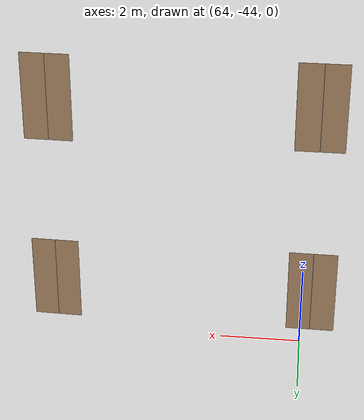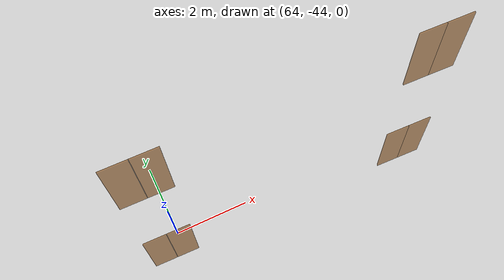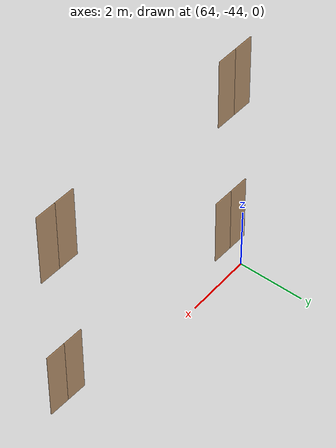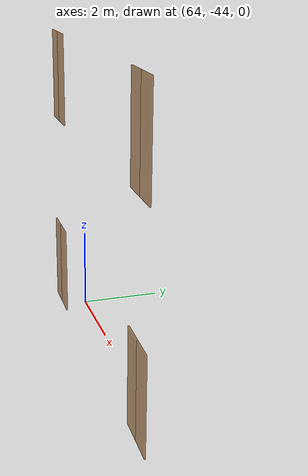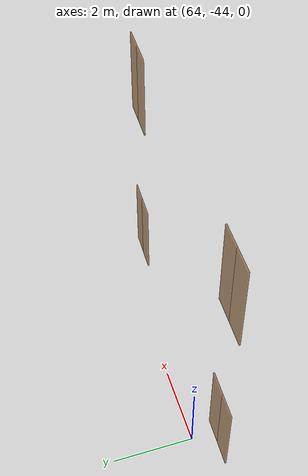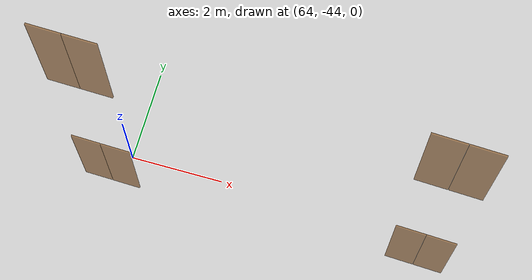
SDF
<sdf version="1.7">
 <world name="sim_world">
  <model name="null40">
   <pose>63.74960956944913 -44.583817192317724 0.0 0 0 -0.022828126539511787</pose>
   <link name="right">
    <pose>0.30718180459921507 0 1.11 0 0 0</pose>
    <visual name="right_visual">
     <geometry><box><size>0.6043636091984301 0.03 2.2</size></box></geometry>
     <material>
      <ambient>0.5 0.25 0 0.6</ambient>
      <diffuse>0.5 0.25 0 0.6</diffuse>
      <pbr><metal><metalness>0.0</metalness></metal></pbr>
     </material>
    </visual>
    <collision name="right_collision">
     <geometry><box><size>0.6043636091984301 0.03 2.2</size></box></geometry>
     <surface><contact><collide_bitmask>0x02</collide_bitmask></contact></surface>
    </collision>
    <inertial>
     <mass>50.0</mass>
     <inertia><ixx>20.17041666666667</ixx><iyy>21.688564050513975</iyy><izz>1.5256473838473035</izz></inertia>
    </inertial>
   </link>
   <joint name="right_joint" type="revolute">
    <parent>world</parent>
    <child>right</child>
    <axis><xyz>0 0 -1</xyz><limit><lower>0</lower><upper>1.57</upper></limit></axis>
    <pose>0.30718180459921507 0 0 0 0 0</pose>
   </joint>
   <link name="left">
    <pose>-0.30718180459921507 0 1.11 0 0 0</pose>
    <visual name="left_visual">
     <geometry><box><size>0.6043636091984301 0.03 2.2</size></box></geometry>
     <material>
      <ambient>0.5 0.25 0 0.6</ambient>
      <diffuse>0.5 0.25 0 0.6</diffuse>
      <pbr><metal><metalness>0.0</metalness></metal></pbr>
     </material>
    </visual>
    <collision name="left_collision">
     <geometry><box><size>0.6043636091984301 0.03 2.2</size></box></geometry>
     <surface><contact><collide_bitmask>0x02</collide_bitmask></contact></surface>
    </collision>
    <inertial>
     <mass>50.0</mass>
     <inertia><ixx>20.17041666666667</ixx><iyy>21.688564050513975</iyy><izz>1.5256473838473035</izz></inertia>
    </inertial>
   </link>
   <joint name="left_joint" type="revolute">
    <parent>world</parent>
    <child>left</child>
    <axis><xyz>0 0 -1</xyz><limit><lower>-1.57</lower><upper>0</upper></limit></axis>
    <pose>-0.30718180459921507 0 0 0 0 0</pose>
   </joint>
   <plugin name="register_component" filename="libregister_component.so">
    <component name="Door">
     <v_max_door>0.5</v_max_door>
     <a_max_door>0.3</a_max_door>
     <a_nom_door>0.15</a_nom_door>
     <dx_min_door>0.01</dx_min_door>
     <f_max_door>500.0</f_max_door>
     <ros_interface>true</ros_interface>
     <door name="null40" type="DoubleSwingDoor" left_joint_name="left_joint" right_joint_name="right_joint"/>
    </component>
   </plugin>
  </model>
  <model name="null41">
   <pose>70.36746405884324 -44.62044671050191 0.0 0 0 -0.03682737184377645</pose>
   <link name="right">
    <pose>0.3069873796742239 0 1.11 0 0 0</pose>
    <visual name="right_visual">
     <geometry><box><size>0.6039747593484478 0.03 2.2</size></box></geometry>
     <material>
      <ambient>0.5 0.25 0 0.6</ambient>
      <diffuse>0.5 0.25 0 0.6</diffuse>
      <pbr><metal><metalness>0.0</metalness></metal></pbr>
     </material>
    </visual>
    <collision name="right_collision">
     <geometry><box><size>0.6039747593484478 0.03 2.2</size></box></geometry>
     <surface><contact><collide_bitmask>0x02</collide_bitmask></contact></surface>
    </collision>
    <inertial>
     <mass>50.0</mass>
     <inertia><ixx>20.17041666666667</ixx><iyy>21.686606291375067</iyy><izz>1.5236896247083977</izz></inertia>
    </inertial>
   </link>
   <joint name="right_joint" type="revolute">
    <parent>world</parent>
    <child>right</child>
    <axis><xyz>0 0 -1</xyz><limit><lower>0</lower><upper>1.57</upper></limit></axis>
    <pose>0.3069873796742239 0 0 0 0 0</pose>
   </joint>
   <link name="left">
    <pose>-0.3069873796742239 0 1.11 0 0 0</pose>
    <visual name="left_visual">
     <geometry><box><size>0.6039747593484478 0.03 2.2</size></box></geometry>
     <material>
      <ambient>0.5 0.25 0 0.6</ambient>
      <diffuse>0.5 0.25 0 0.6</diffuse>
      <pbr><metal><metalness>0.0</metalness></metal></pbr>
     </material>
    </visual>
    <collision name="left_collision">
     <geometry><box><size>0.6039747593484478 0.03 2.2</size></box></geometry>
     <surface><contact><collide_bitmask>0x02</collide_bitmask></contact></surface>
    </collision>
    <inertial>
     <mass>50.0</mass>
     <inertia><ixx>20.17041666666667</ixx><iyy>21.686606291375067</iyy><izz>1.5236896247083977</izz></inertia>
    </inertial>
   </link>
   <joint name="left_joint" type="revolute">
    <parent>world</parent>
    <child>left</child>
    <axis><xyz>0 0 -1</xyz><limit><lower>-1.57</lower><upper>0</upper></limit></axis>
    <pose>-0.3069873796742239 0 0 0 0 0</pose>
   </joint>
   <plugin name="register_component" filename="libregister_component.so">
    <component name="Door">
     <v_max_door>0.5</v_max_door>
     <a_max_door>0.3</a_max_door>
     <a_nom_door>0.15</a_nom_door>
     <dx_min_door>0.01</dx_min_door>
     <f_max_door>500.0</f_max_door>
     <ros_interface>true</ros_interface>
     <door name="null41" type="DoubleSwingDoor" left_joint_name="left_joint" right_joint_name="right_joint"/>
    </component>
   </plugin>
  </model>
  <model name="anull40">
   <pose>63.75179593328188 -44.556764175786796 5.0 0 0 -0.022827264720685185</pose>
   <link name="right">
    <pose>0.30718312827641125 0 1.11 0 0 0</pose>
    <visual name="right_visual">
     <geometry><box><size>0.6043662565528225 0.03 2.2</size></box></geometry>
     <material>
      <ambient>0.5 0.25 0 0.6</ambient>
      <diffuse>0.5 0.25 0 0.6</diffuse>
      <pbr><metal><metalness>0.0</metalness></metal></pbr>
     </material>
    </visual>
    <collision name="right_collision">
     <geometry><box><size>0.6043662565528225 0.03 2.2</size></box></geometry>
     <surface><contact><collide_bitmask>0x02</collide_bitmask></contact></surface>
    </collision>
    <inertial>
     <mass>50.0</mass>
     <inertia><ixx>20.17041666666667</ixx><iyy>21.688577383581972</iyy><izz>1.5256607169153003</izz></inertia>
    </inertial>
   </link>
   <joint name="right_joint" type="revolute">
    <parent>world</parent>
    <child>right</child>
    <axis><xyz>0 0 -1</xyz><limit><lower>0</lower><upper>1.57</upper></limit></axis>
    <pose>0.30718312827641125 0 0 0 0 0</pose>
   </joint>
   <link name="left">
    <pose>-0.30718312827641125 0 1.11 0 0 0</pose>
    <visual name="left_visual">
     <geometry><box><size>0.6043662565528225 0.03 2.2</size></box></geometry>
     <material>
      <ambient>0.5 0.25 0 0.6</ambient>
      <diffuse>0.5 0.25 0 0.6</diffuse>
      <pbr><metal><metalness>0.0</metalness></metal></pbr>
     </material>
    </visual>
    <collision name="left_collision">
     <geometry><box><size>0.6043662565528225 0.03 2.2</size></box></geometry>
     <surface><contact><collide_bitmask>0x02</collide_bitmask></contact></surface>
    </collision>
    <inertial>
     <mass>50.0</mass>
     <inertia><ixx>20.17041666666667</ixx><iyy>21.688577383581972</iyy><izz>1.5256607169153003</izz></inertia>
    </inertial>
   </link>
   <joint name="left_joint" type="revolute">
    <parent>world</parent>
    <child>left</child>
    <axis><xyz>0 0 -1</xyz><limit><lower>-1.57</lower><upper>0</upper></limit></axis>
    <pose>-0.30718312827641125 0 0 0 0 0</pose>
   </joint>
   <plugin name="register_component" filename="libregister_component.so">
    <component name="Door">
     <v_max_door>0.5</v_max_door>
     <a_max_door>0.3</a_max_door>
     <a_nom_door>0.15</a_nom_door>
     <dx_min_door>0.01</dx_min_door>
     <f_max_door>500.0</f_max_door>
     <ros_interface>true</ros_interface>
     <door name="anull40" type="DoubleSwingDoor" left_joint_name="left_joint" right_joint_name="right_joint"/>
    </component>
   </plugin>
  </model>
  <model name="anull41">
   <pose>70.36967897124023 -44.59338814839497 5.0 0 0 -0.036826510024928566</pose>
   <link name="right">
    <pose>0.30698870251362415 0 1.11 0 0 0</pose>
    <visual name="right_visual">
     <geometry><box><size>0.6039774050272483 0.03 2.2</size></box></geometry>
     <material>
      <ambient>0.5 0.25 0 0.6</ambient>
      <diffuse>0.5 0.25 0 0.6</diffuse>
      <pbr><metal><metalness>0.0</metalness></metal></pbr>
     </material>
    </visual>
    <collision name="right_collision">
     <geometry><box><size>0.6039774050272483 0.03 2.2</size></box></geometry>
     <surface><contact><collide_bitmask>0x02</collide_bitmask></contact></surface>
    </collision>
    <inertial>
     <mass>50.0</mass>
     <inertia><ixx>20.17041666666667</ixx><iyy>21.68661960743104</iyy><izz>1.5237029407643699</izz></inertia>
    </inertial>
   </link>
   <joint name="right_joint" type="revolute">
    <parent>world</parent>
    <child>right</child>
    <axis><xyz>0 0 -1</xyz><limit><lower>0</lower><upper>1.57</upper></limit></axis>
    <pose>0.30698870251362415 0 0 0 0 0</pose>
   </joint>
   <link name="left">
    <pose>-0.30698870251362415 0 1.11 0 0 0</pose>
    <visual name="left_visual">
     <geometry><box><size>0.6039774050272483 0.03 2.2</size></box></geometry>
     <material>
      <ambient>0.5 0.25 0 0.6</ambient>
      <diffuse>0.5 0.25 0 0.6</diffuse>
      <pbr><metal><metalness>0.0</metalness></metal></pbr>
     </material>
    </visual>
    <collision name="left_collision">
     <geometry><box><size>0.6039774050272483 0.03 2.2</size></box></geometry>
     <surface><contact><collide_bitmask>0x02</collide_bitmask></contact></surface>
    </collision>
    <inertial>
     <mass>50.0</mass>
     <inertia><ixx>20.17041666666667</ixx><iyy>21.68661960743104</iyy><izz>1.5237029407643699</izz></inertia>
    </inertial>
   </link>
   <joint name="left_joint" type="revolute">
    <parent>world</parent>
    <child>left</child>
    <axis><xyz>0 0 -1</xyz><limit><lower>-1.57</lower><upper>0</upper></limit></axis>
    <pose>-0.30698870251362415 0 0 0 0 0</pose>
   </joint>
   <plugin name="register_component" filename="libregister_component.so">
    <component name="Door">
     <v_max_door>0.5</v_max_door>
     <a_max_door>0.3</a_max_door>
     <a_nom_door>0.15</a_nom_door>
     <dx_min_door>0.01</dx_min_door>
     <f_max_door>500.0</f_max_door>
     <ros_interface>true</ros_interface>
     <door name="anull41" type="DoubleSwingDoor" left_joint_name="left_joint" right_joint_name="right_joint"/>
    </component>
   </plugin>
  </model>
 </world>
</sdf>
